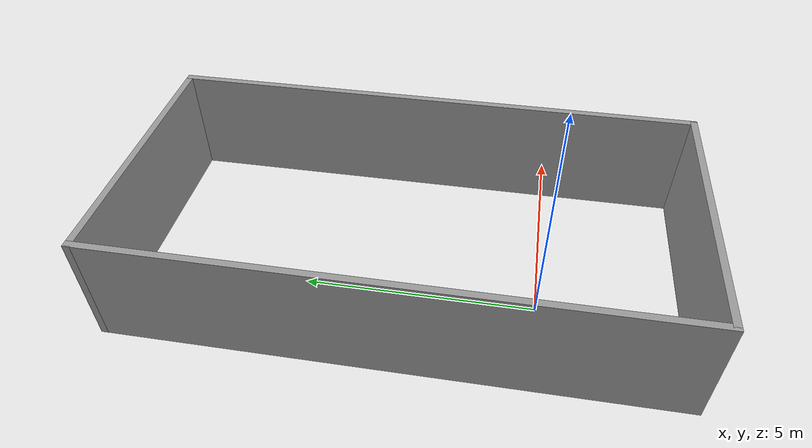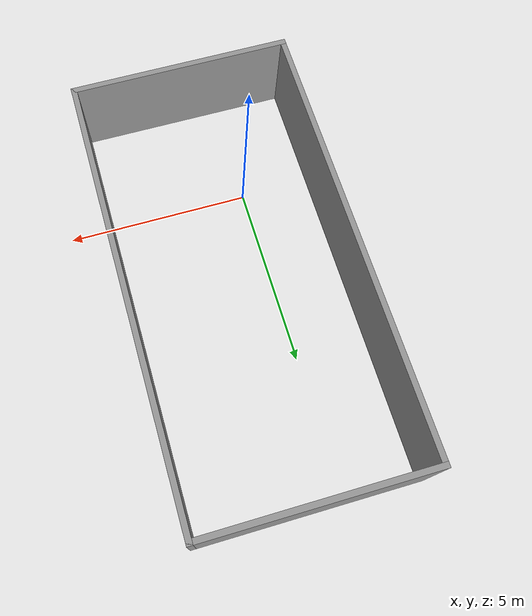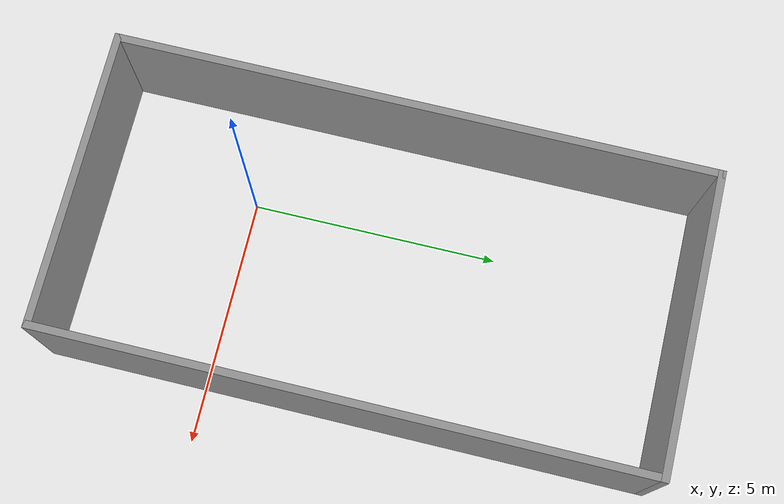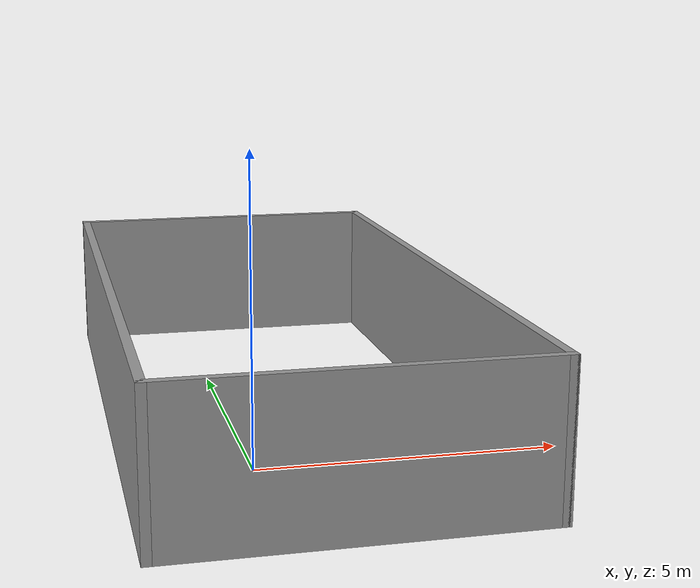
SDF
<?xml version='1.0'?>
<sdf version='1.7'>
  <model name='pedsimtestbed'>
    <pose>0.945 2.835 0 0 -0 0</pose>
    <link name='Wall_0'>
      <collision name='Wall_0_Collision'>
        <geometry>
          <box>
            <size>6 0.15 2.5</size>
          </box>
        </geometry>
        <pose>0 0 1.25 0 -0 0</pose>
      </collision>
      <visual name='Wall_0_Visual'>
        <pose>0 0 1.25 0 -0 0</pose>
        <geometry>
          <box>
            <size>6 0.15 2.5</size>
          </box>
        </geometry>
        <material>
          <script>
            <uri>file://media/materials/scripts/gazebo.material</uri>
            <name>Gazebo/Grey</name>
          </script>
          <ambient>1 1 1 1</ambient>
        </material>
        <meta>
          <layer>0</layer>
        </meta>
      </visual>
      <pose>0 -5.925 0 0 -0 0</pose>
    </link>
    <link name='Wall_2'>
      <collision name='Wall_2_Collision'>
        <geometry>
          <box>
            <size>12 0.15 2.5</size>
          </box>
        </geometry>
        <pose>0 0 1.25 0 -0 0</pose>
      </collision>
      <visual name='Wall_2_Visual'>
        <pose>0 0 1.25 0 -0 0</pose>
        <geometry>
          <box>
            <size>12 0.15 2.5</size>
          </box>
        </geometry>
        <material>
          <script>
            <uri>file://media/materials/scripts/gazebo.material</uri>
            <name>Gazebo/Grey</name>
          </script>
          <ambient>1 1 1 1</ambient>
        </material>
        <meta>
          <layer>0</layer>
        </meta>
      </visual>
      <pose>2.925 0 0 0 -0 1.5708</pose>
    </link>
    <link name='Wall_4'>
      <collision name='Wall_4_Collision'>
        <geometry>
          <box>
            <size>6 0.15 2.5</size>
          </box>
        </geometry>
        <pose>0 0 1.25 0 -0 0</pose>
      </collision>
      <visual name='Wall_4_Visual'>
        <pose>0 0 1.25 0 -0 0</pose>
        <geometry>
          <box>
            <size>6 0.15 2.5</size>
          </box>
        </geometry>
        <material>
          <script>
            <uri>file://media/materials/scripts/gazebo.material</uri>
            <name>Gazebo/Grey</name>
          </script>
          <ambient>1 1 1 1</ambient>
        </material>
        <meta>
          <layer>0</layer>
        </meta>
      </visual>
      <pose>0 5.925 0 0 -0 3.14159</pose>
    </link>
    <link name='Wall_7'>
      <collision name='Wall_7_Collision'>
        <geometry>
          <box>
            <size>12 0.15 2.5</size>
          </box>
        </geometry>
        <pose>0 0 1.25 0 -0 0</pose>
      </collision>
      <visual name='Wall_7_Visual'>
        <pose>0 0 1.25 0 -0 0</pose>
        <geometry>
          <box>
            <size>12 0.15 2.5</size>
          </box>
        </geometry>
        <material>
          <script>
            <uri>file://media/materials/scripts/gazebo.material</uri>
            <name>Gazebo/Grey</name>
          </script>
          <ambient>1 1 1 1</ambient>
        </material>
        <meta>
          <layer>0</layer>
        </meta>
      </visual>
      <pose>-2.925 0 0 0 -0 -1.5708</pose>
    </link>
    <static>1</static>
  </model>
</sdf>
